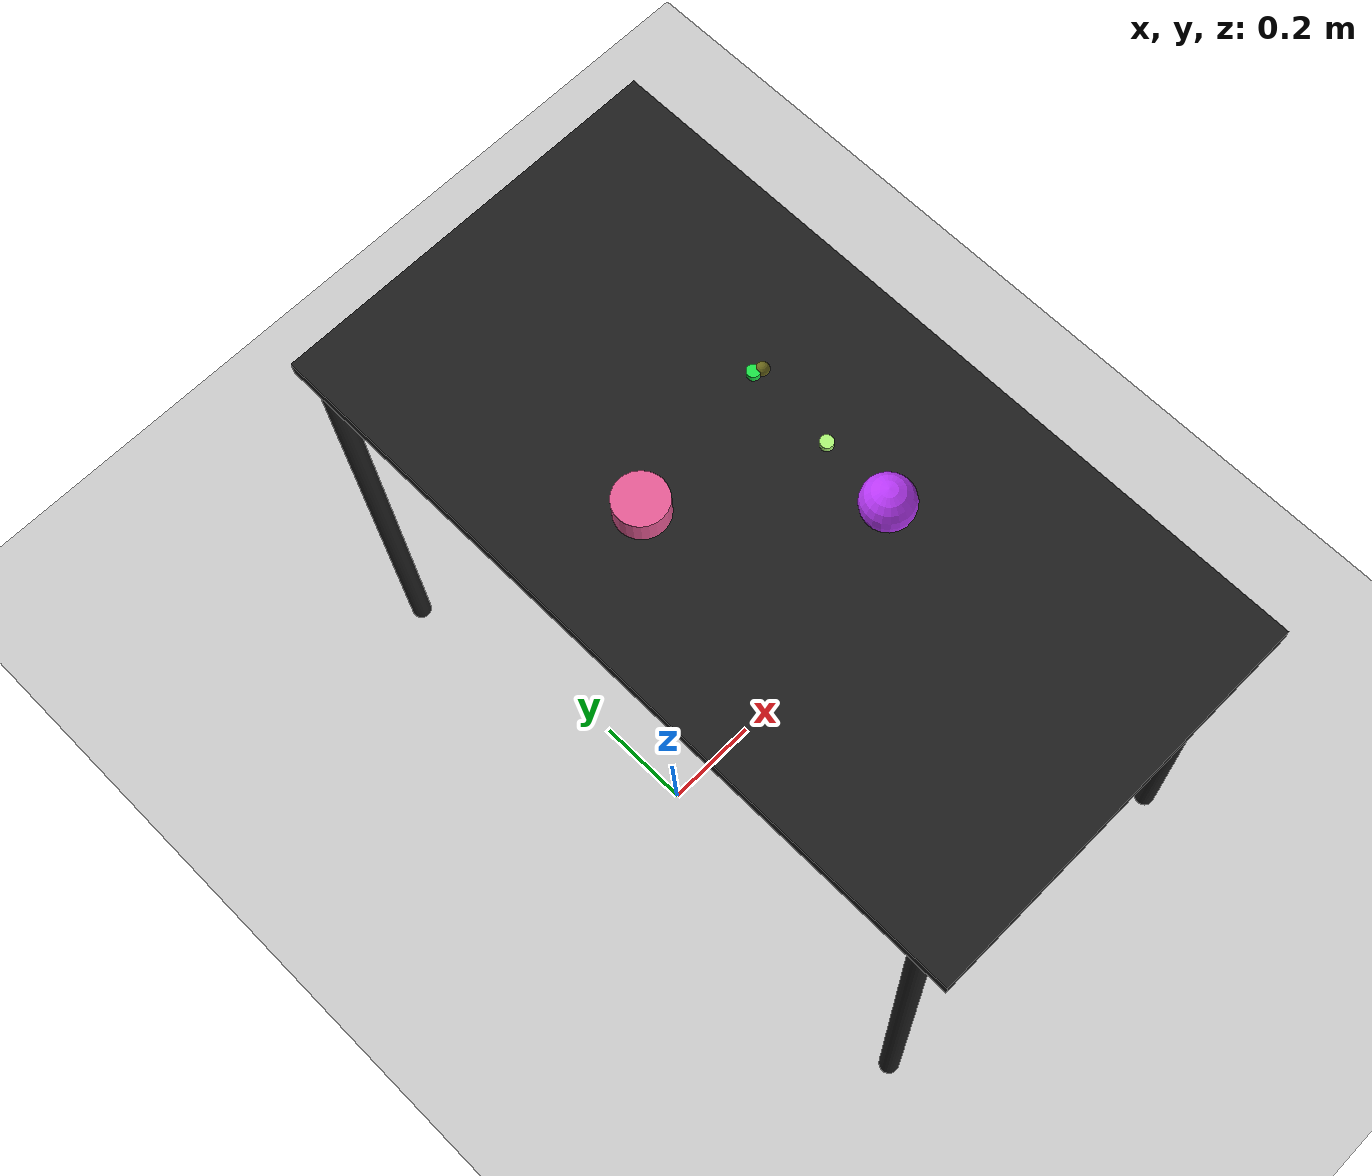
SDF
<?xml version="1.0" ?>
<sdf version="1.6">
  <world name="arm_world">
    <plugin filename="gz-sim-physics-system" name="gz::sim::systems::Physics">
      <engine>
        <filename>libgz-physics-bullet-featherstone-plugin.so</filename>
      </engine>
    </plugin>
    <plugin filename="gz-sim-user-commands-system" name="gz::sim::systems::UserCommands"/>
    <plugin filename="gz-sim-scene-broadcaster-system" name="gz::sim::systems::SceneBroadcaster"/>
    <plugin filename="gz-sim-sensors-system" name="gz::sim::systems::Sensors">
      <render_engine>ogre2</render_engine>
    </plugin>
    <gravity>0.0 0.0 -9.8</gravity>
    <scene>
      <shadows>false</shadows>
    </scene>
    <gui>
      <camera name="user_camera">
        <pose>0.75 -0.75 1.4 0 0.29 2.21</pose>
      </camera>
    </gui>
    <include>
      <uri>https://fuel.gazebosim.org/1.0/OpenRobotics/models/Sun</uri>
    </include>
    <model name="table">
      <static>true</static>
      <include>
        <uri>model://table</uri>
      </include>
      <pose>0.29 0 0 0 0 1.5708</pose>
    </model>
    <model name="ground_plane">
      <static>true</static>
      <link name="link">
        <collision name="collision">
          <geometry>
            <plane>
              <normal>0 0 1</normal>
            </plane>
          </geometry>
          <surface>
            <friction>
              <ode>
                <mu>1.0</mu>
                <mu2>1.0</mu2>
              </ode>
            </friction>
          </surface>
        </collision>
        <visual name="visual">
          <geometry>
            <plane>
              <normal>0 0 1</normal>
              <size>100 100</size>
            </plane>
          </geometry>
          <material>
            <ambient>0.8 0.8 0.8 1</ambient>
            <diffuse>0.8 0.8 0.8 1</diffuse>
            <specular>0.8 0.8 0.8 1</specular>
          </material>
        </visual>
      </link>
    </model>
    <model name="sphere_s_0">
      <pose>0.426 0.166 1.05 0 0 3.45</pose>
      <link name="sphere_s_0_link">
        <inertial>
          <mass>0.05</mass>
          <inertia>
            <ixx>2.04e-7</ixx>
            <iyy>2.04e-7</iyy>
            <izz>3.9e-8</izz>
            <ixy>0</ixy>
            <ixz>0</ixz>
            <iyz>0</iyz>
          </inertia>
        </inertial>
        <collision name="sphere_s_0_collision">
          <geometry>
            <sphere>
              <radius>0.0125</radius>
            </sphere>
          </geometry>
          <surface>
            <friction>
              <ode>
                <mu>0.8</mu>
                <mu2>0.8</mu2>
                <fdir1>0 0 1</fdir1>
                <slip1>0.001</slip1>
                <slip2>0.001</slip2>
              </ode>
              <torsional>
                <coefficient>0.1</coefficient>
                <surface_radius>0.015</surface_radius>
                <use_patch_radius>true</use_patch_radius>
              </torsional>
            </friction>
            <contact>
              <ode>
                <kp>1e5</kp>
                <kd>10</kd>
                <max_vel>0.1</max_vel>
                <min_depth>0.001</min_depth>
                <soft_cfm>0.01</soft_cfm>
                <soft_erp>0.2</soft_erp>
              </ode>
            </contact>
            <bounce>
              <restitution_coefficient>0.2</restitution_coefficient>
              <threshold>0.01</threshold>
            </bounce>
          </surface>
        </collision>
        <visual name="sphere_s_0_visual">
          <geometry>
            <sphere>
              <radius>0.0125</radius>
            </sphere>
          </geometry>
          <material>
            <ambient>0.41 0.4 0.1 1</ambient>
            <diffuse>0.41 0.4 0.1 1</diffuse>
          </material>
        </visual>
        <velocity_decay>
          <linear>1</linear>
          <angular>1</angular>
        </velocity_decay>
      </link>
    </model>
    <model name="cylinder_s_1">
      <pose>0.41 0.172 1.05 0 0 5.9</pose>
      <link name="cylinder_s_1_link">
        <inertial>
          <mass>0.05</mass>
          <inertia>
            <ixx>2.04e-7</ixx>
            <iyy>2.04e-7</iyy>
            <izz>3.9e-8</izz>
            <ixy>0</ixy>
            <ixz>0</ixz>
            <iyz>0</iyz>
          </inertia>
        </inertial>
        <collision name="cylinder_s_1_collision">
          <geometry>
            <cylinder>
              <radius>0.0125</radius>
              <length>0.0125</length>
            </cylinder>
          </geometry>
          <surface>
            <friction>
              <ode>
                <mu>0.8</mu>
                <mu2>0.8</mu2>
                <fdir1>0 0 1</fdir1>
                <slip1>0.001</slip1>
                <slip2>0.001</slip2>
              </ode>
              <torsional>
                <coefficient>0.1</coefficient>
                <surface_radius>0.015</surface_radius>
                <use_patch_radius>true</use_patch_radius>
              </torsional>
            </friction>
            <contact>
              <ode>
                <kp>1e5</kp>
                <kd>10</kd>
                <max_vel>0.1</max_vel>
                <min_depth>0.001</min_depth>
                <soft_cfm>0.01</soft_cfm>
                <soft_erp>0.2</soft_erp>
              </ode>
            </contact>
            <bounce>
              <restitution_coefficient>0.2</restitution_coefficient>
              <threshold>0.01</threshold>
            </bounce>
          </surface>
        </collision>
        <visual name="cylinder_s_1_visual">
          <geometry>
            <cylinder>
              <radius>0.0125</radius>
              <length>0.0125</length>
            </cylinder>
          </geometry>
          <material>
            <ambient>0.11 0.9 0.28 1</ambient>
            <diffuse>0.11 0.9 0.28 1</diffuse>
          </material>
        </visual>
        <velocity_decay>
          <linear>1</linear>
          <angular>1</angular>
        </velocity_decay>
      </link>
    </model>
    <model name="sphere_l_2">
      <pose>0.395 -0.149 1.05 0 0 0.21</pose>
      <link name="sphere_l_2_link">
        <inertial>
          <mass>0.05</mass>
          <inertia>
            <ixx>2.04e-7</ixx>
            <iyy>2.04e-7</iyy>
            <izz>3.9e-8</izz>
            <ixy>0</ixy>
            <ixz>0</ixz>
            <iyz>0</iyz>
          </inertia>
        </inertial>
        <collision name="sphere_l_2_collision">
          <geometry>
            <sphere>
              <radius>0.05</radius>
            </sphere>
          </geometry>
          <surface>
            <friction>
              <ode>
                <mu>0.8</mu>
                <mu2>0.8</mu2>
                <fdir1>0 0 1</fdir1>
                <slip1>0.001</slip1>
                <slip2>0.001</slip2>
              </ode>
              <torsional>
                <coefficient>0.1</coefficient>
                <surface_radius>0.015</surface_radius>
                <use_patch_radius>true</use_patch_radius>
              </torsional>
            </friction>
            <contact>
              <ode>
                <kp>1e5</kp>
                <kd>10</kd>
                <max_vel>0.1</max_vel>
                <min_depth>0.001</min_depth>
                <soft_cfm>0.01</soft_cfm>
                <soft_erp>0.2</soft_erp>
              </ode>
            </contact>
            <bounce>
              <restitution_coefficient>0.2</restitution_coefficient>
              <threshold>0.01</threshold>
            </bounce>
          </surface>
        </collision>
        <visual name="sphere_l_2_visual">
          <geometry>
            <sphere>
              <radius>0.05</radius>
            </sphere>
          </geometry>
          <material>
            <ambient>0.73 0.22 0.98 1</ambient>
            <diffuse>0.73 0.22 0.98 1</diffuse>
          </material>
        </visual>
        <velocity_decay>
          <linear>1</linear>
          <angular>1</angular>
        </velocity_decay>
      </link>
    </model>
    <model name="cylinder_l_3">
      <pose>0.112 0.131 1.05 0 0 3.7</pose>
      <link name="cylinder_l_3_link">
        <inertial>
          <mass>0.05</mass>
          <inertia>
            <ixx>2.04e-7</ixx>
            <iyy>2.04e-7</iyy>
            <izz>3.9e-8</izz>
            <ixy>0</ixy>
            <ixz>0</ixz>
            <iyz>0</iyz>
          </inertia>
        </inertial>
        <collision name="cylinder_l_3_collision">
          <geometry>
            <cylinder>
              <radius>0.05</radius>
              <length>0.05</length>
            </cylinder>
          </geometry>
          <surface>
            <friction>
              <ode>
                <mu>0.8</mu>
                <mu2>0.8</mu2>
                <fdir1>0 0 1</fdir1>
                <slip1>0.001</slip1>
                <slip2>0.001</slip2>
              </ode>
              <torsional>
                <coefficient>0.1</coefficient>
                <surface_radius>0.015</surface_radius>
                <use_patch_radius>true</use_patch_radius>
              </torsional>
            </friction>
            <contact>
              <ode>
                <kp>1e5</kp>
                <kd>10</kd>
                <max_vel>0.1</max_vel>
                <min_depth>0.001</min_depth>
                <soft_cfm>0.01</soft_cfm>
                <soft_erp>0.2</soft_erp>
              </ode>
            </contact>
            <bounce>
              <restitution_coefficient>0.2</restitution_coefficient>
              <threshold>0.01</threshold>
            </bounce>
          </surface>
        </collision>
        <visual name="cylinder_l_3_visual">
          <geometry>
            <cylinder>
              <radius>0.05</radius>
              <length>0.05</length>
            </cylinder>
          </geometry>
          <material>
            <ambient>0.91 0.36 0.59 1</ambient>
            <diffuse>0.91 0.36 0.59 1</diffuse>
          </material>
        </visual>
        <velocity_decay>
          <linear>1</linear>
          <angular>1</angular>
        </velocity_decay>
      </link>
    </model>
    <model name="cylinder_s_4">
      <pose>0.402 -0.005 1.05 0 0 5.53</pose>
      <link name="cylinder_s_4_link">
        <inertial>
          <mass>0.05</mass>
          <inertia>
            <ixx>2.04e-7</ixx>
            <iyy>2.04e-7</iyy>
            <izz>3.9e-8</izz>
            <ixy>0</ixy>
            <ixz>0</ixz>
            <iyz>0</iyz>
          </inertia>
        </inertial>
        <collision name="cylinder_s_4_collision">
          <geometry>
            <cylinder>
              <radius>0.0125</radius>
              <length>0.0125</length>
            </cylinder>
          </geometry>
          <surface>
            <friction>
              <ode>
                <mu>0.8</mu>
                <mu2>0.8</mu2>
                <fdir1>0 0 1</fdir1>
                <slip1>0.001</slip1>
                <slip2>0.001</slip2>
              </ode>
              <torsional>
                <coefficient>0.1</coefficient>
                <surface_radius>0.015</surface_radius>
                <use_patch_radius>true</use_patch_radius>
              </torsional>
            </friction>
            <contact>
              <ode>
                <kp>1e5</kp>
                <kd>10</kd>
                <max_vel>0.1</max_vel>
                <min_depth>0.001</min_depth>
                <soft_cfm>0.01</soft_cfm>
                <soft_erp>0.2</soft_erp>
              </ode>
            </contact>
            <bounce>
              <restitution_coefficient>0.2</restitution_coefficient>
              <threshold>0.01</threshold>
            </bounce>
          </surface>
        </collision>
        <visual name="cylinder_s_4_visual">
          <geometry>
            <cylinder>
              <radius>0.0125</radius>
              <length>0.0125</length>
            </cylinder>
          </geometry>
          <material>
            <ambient>0.68 0.97 0.46 1</ambient>
            <diffuse>0.68 0.97 0.46 1</diffuse>
          </material>
        </visual>
        <velocity_decay>
          <linear>1</linear>
          <angular>1</angular>
        </velocity_decay>
      </link>
    </model>
  </world>
</sdf>

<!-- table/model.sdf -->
<sdf version="1.5">
  <model name="table">
    <static>true</static>
    <link name="link">
      <collision name="surface">
        <pose>0 0 1.0 0 0 0</pose>
        <geometry>
          <box>
            <size>1.5 0.8 0.03</size>
          </box>
        </geometry>
        <surface>
          <friction>
            <ode>
              <mu>0.6</mu>
              <mu2>0.6</mu2>
            </ode>
          </friction>
        </surface>
      </collision>
      <visual name="surface">
        <pose>0 0 1.0 0 0 0</pose>
        <geometry>
          <box>
            <size>1.5 0.8 0.03</size>
          </box>
        </geometry>
        <material>
          <script>
            <uri>file://media/materials/scripts/gazebo.material</uri>
            <name>Gazebo/Black</name>
          </script>
        </material>
      </visual>
      <collision name="front_left_leg">
        <pose>0.68 0.38 0.5 0 0 0</pose>
        <geometry>
          <cylinder>
            <radius>0.02</radius>
            <length>1.0</length>
          </cylinder>
        </geometry>
      </collision>
      <visual name="front_left_leg">
        <pose>0.68 0.38 0.5 0 0 0</pose>
        <geometry>
          <cylinder>
            <radius>0.02</radius>
            <length>1.0</length>
          </cylinder>
        </geometry>
        <material>
          <script>
            <uri>file://media/materials/scripts/gazebo.material</uri>
            <name>Gazebo/Black</name>
          </script>
        </material>
      </visual>
      <collision name="front_right_leg">
        <pose>0.68 -0.38 0.5 0 0 0</pose>
        <geometry>
          <cylinder>
            <radius>0.02</radius>
            <length>1.0</length>
          </cylinder>
        </geometry>
      </collision>
      <visual name="front_right_leg">
        <pose>0.68 -0.38 0.5 0 0 0</pose>
        <geometry>
          <cylinder>
            <radius>0.02</radius>
            <length>1.0</length>
          </cylinder>
        </geometry>
        <material>
          <script>
            <uri>file://media/materials/scripts/gazebo.material</uri>
            <name>Gazebo/Black</name>
          </script>
        </material>
      </visual>
      <collision name="back_right_leg">
        <pose>-0.68 -0.38 0.5 0 0 0</pose>
        <geometry>
          <cylinder>
            <radius>0.02</radius>
            <length>1.0</length>
          </cylinder>
        </geometry>
      </collision>
      <visual name="back_right_leg">
        <pose>-0.68 -0.38 0.5 0 0 0</pose>
        <geometry>
          <cylinder>
            <radius>0.02</radius>
            <length>1.0</length>
          </cylinder>
        </geometry>
        <material>
          <script>
            <uri>file://media/materials/scripts/gazebo.material</uri>
            <name>Gazebo/Black</name>
          </script>
        </material>
      </visual>
      <collision name="back_left_leg">
        <pose>-0.68 0.38 0.5 0 0 0</pose>
        <geometry>
          <cylinder>
            <radius>0.02</radius>
            <length>1.0</length>
          </cylinder>
        </geometry>
      </collision>
      <visual name="back_left_leg">
        <pose>-0.68 0.38 0.5 0 0 0</pose>
        <geometry>
          <cylinder>
            <radius>0.02</radius>
            <length>1.0</length>
          </cylinder>
        </geometry>
        <material>
          <script>
            <uri>file://media/materials/scripts/gazebo.material</uri>
            <name>Gazebo/Black</name>
          </script>
        </material>
      </visual>
    </link>
  </model>
</sdf>
